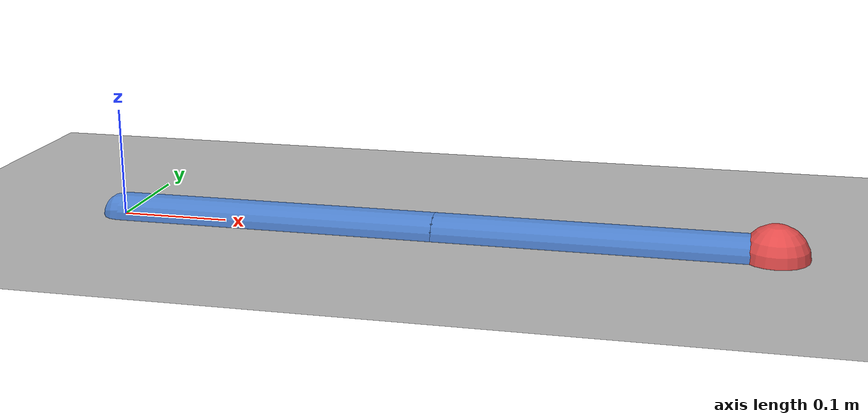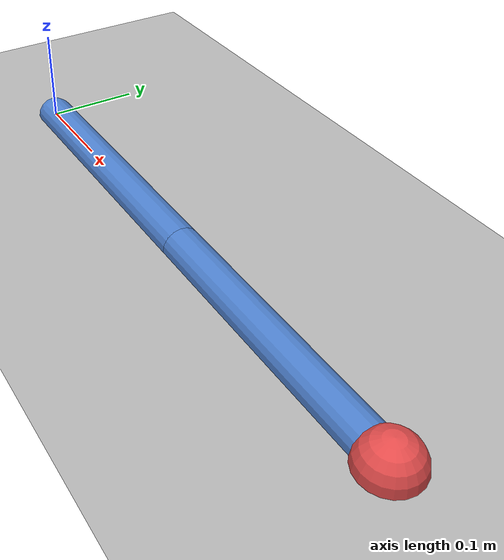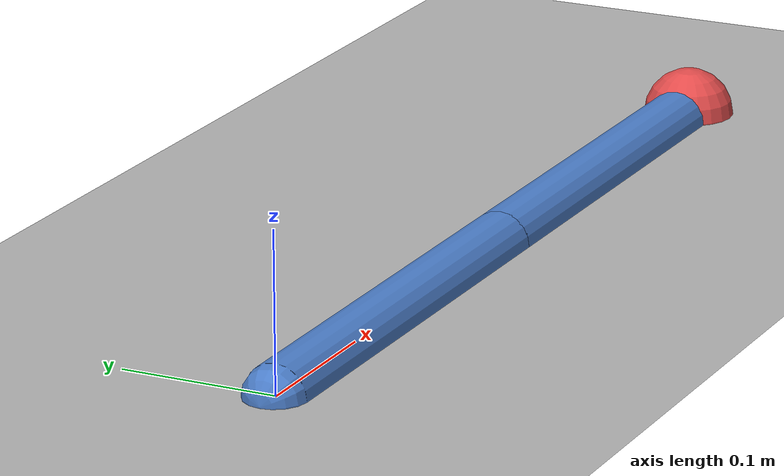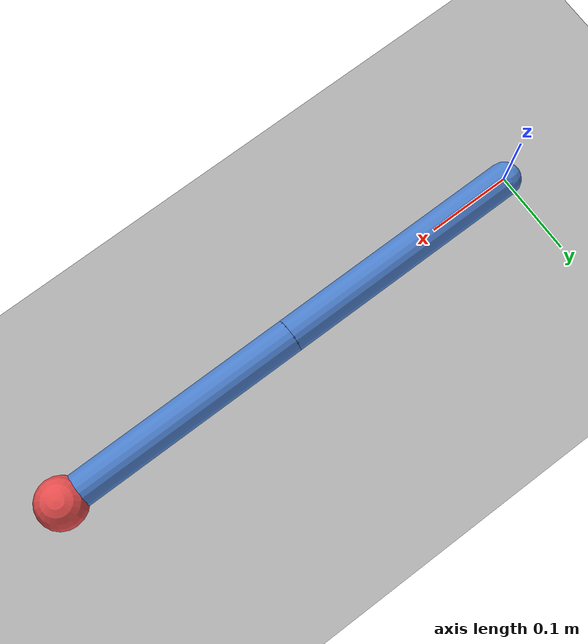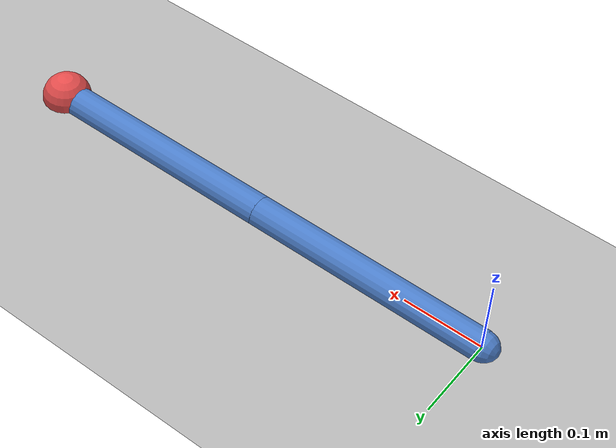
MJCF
<mujoco model="2R_robotic_arm">
    <compiler angle="degree" coordinate="local"/>
    <option timestep="0.01" gravity="0 0 -9.81" integrator="RK4"/>

    <default>
        <joint damping="0.1" armature="0.0001" limited="true"/>
        <geom type="capsule" rgba="0.3 0.5 0.8 1" friction="1 0.1 0.1"/>
        <motor ctrllimited="true" ctrlrange="-10 10"/>
    </default>

    <worldbody>
        <body name="base" pos="0 0 0">
            <geom name="ground" type="plane" size="1 1 0.1" rgba="0.7 0.7 0.7 1"/>

            <!-- Link 1 -->
            <body name="link1" pos="0 0 0">
                <joint name="joint1" type="hinge" axis="0 0 1" range="-90 90"/>
                <geom fromto="0 0 0 0.3 0 0" size="0.02" mass="0.2"/>

                <!-- Link 2 -->
                <body name="link2" pos="0.3 0 0">
                    <joint name="joint2" type="hinge" axis="0 0 1" range="-90 90"/>
                    <geom fromto="0 0 0 0.3 0 0" size="0.02" mass="0.15"/>

                    <!-- End-effector -->
                    <body name="ee" pos="0.3 0 0">
                        <geom name="end_effector" type="sphere" size="0.03" rgba="0.9 0.3 0.3 1"/>
                    </body>
                </body>
            </body>
        </body>
    </worldbody>

    <actuator>
        <!-- Increased gear values for visible motion -->
        <motor name="motor1" joint="joint1" gear="200"/>
        <motor name="motor2" joint="joint2" gear="200"/>
    </actuator>
</mujoco>
